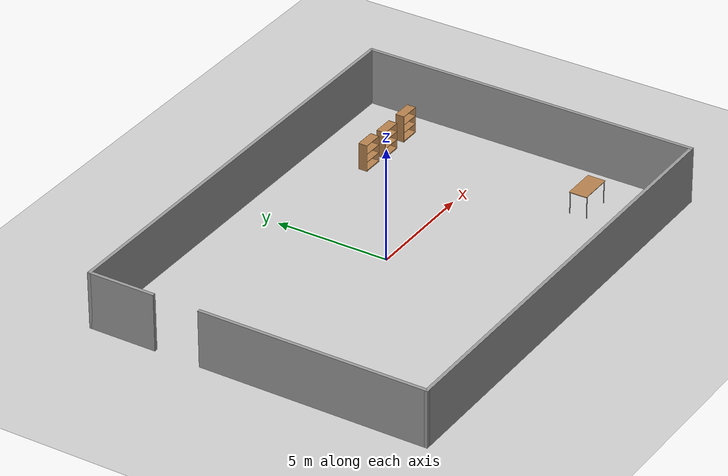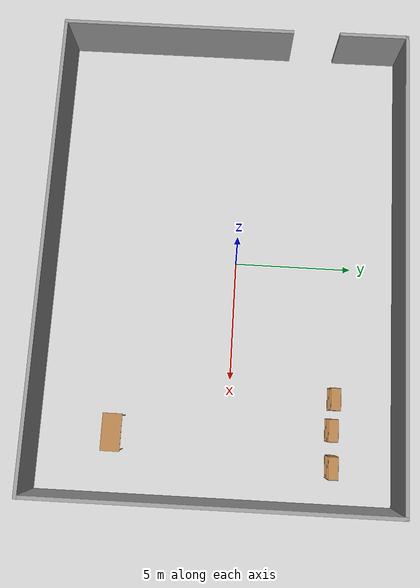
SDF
<sdf version="1.7">
 <world name="default">
  <model name="ground_plane">
   <static>1</static>
   <link name="link">
    <collision name="collision">
     <geometry><plane><normal>0 0 1</normal><size>100 100</size></plane></geometry>
     <surface><friction><ode><mu>100</mu><mu2>50</mu2></ode></friction></surface>
    </collision>
    <visual name="visual">
     <cast_shadows>0</cast_shadows>
     <geometry><plane><normal>0 0 1</normal><size>100 100</size></plane></geometry>
     <material>
      <script><uri>file://media/materials/scripts/gazebo.material</uri><name>Gazebo/Grey</name></script>
     </material>
    </visual>
   </link>
  </model>
  <light name="sun" type="directional">
   <pose>0 0 10 0 -0 0</pose>
   <diffuse>0.8 0.8 0.8 1</diffuse>
   <specular>0.2 0.2 0.2 1</specular>
   <attenuation>
    <range>1000</range>
    <constant>0.9</constant>
    <linear>0.01</linear>
    <quadratic>0.001</quadratic>
   </attenuation>
   <direction>-0.5 0.1 -0.9</direction>
   <spot><inner_angle>0</inner_angle><outer_angle>0</outer_angle><falloff>0</falloff></spot>
  </light>
  <scene><shadows>0</shadows><ambient>0.4 0.4 0.4 1</ambient><background>0.7 0.7 0.7 1</background></scene>
  <physics type="ode">
   <real_time_update_rate>1000</real_time_update_rate>
   <max_step_size>0.001</max_step_size>
   <real_time_factor>1</real_time_factor>
   <ode>
    <solver>
     <type>quick</type>
     <iters>150</iters>
     <precon_iters>0</precon_iters>
     <sor>1.4</sor>
     <use_dynamic_moi_rescaling>1</use_dynamic_moi_rescaling>
    </solver>
    <constraints>
     <cfm>1e-05</cfm>
     <erp>0.2</erp>
     <contact_max_correcting_vel>2000</contact_max_correcting_vel>
     <contact_surface_layer>0.01</contact_surface_layer>
    </constraints>
   </ode>
  </physics>
  <gravity>0 0 -9.8</gravity>
  <magnetic_field>6e-06 2.3e-05 -4.2e-05</magnetic_field>
  <atmosphere type="adiabatic"/>
  <audio><device>default</device></audio>
  <spherical_coordinates>
   <surface_model>EARTH_WGS84</surface_model>
   <latitude_deg>0</latitude_deg>
   <longitude_deg>0</longitude_deg>
   <elevation>0</elevation>
   <heading_deg>0</heading_deg>
  </spherical_coordinates>
  <model name="itu_walls">
   <pose>-0.001584 -0.508357 0 0 -0 0</pose>
   <link name="Wall_2">
    <collision name="Wall_2_Collision">
     <geometry><box><size>20 0.15 2.5</size></box></geometry>
     <pose>0 0 1.25 0 -0 0</pose>
    </collision>
    <visual name="Wall_2_Visual">
     <pose>0 0 1.25 0 -0 0</pose>
     <geometry><box><size>20 0.15 2.5</size></box></geometry>
     <material>
      <script><uri>file://media/materials/scripts/gazebo.material</uri><name>Gazebo/Grey</name></script>
      <ambient>1 1 1 1</ambient>
     </material>
     <meta><layer>0</layer></meta>
    </visual>
    <pose>0 7.425 0 0 -0 0</pose>
   </link>
   <link name="Wall_3">
    <collision name="Wall_3_Collision">
     <geometry><box><size>15 0.15 2.5</size></box></geometry>
     <pose>0 0 1.25 0 -0 0</pose>
    </collision>
    <visual name="Wall_3_Visual">
     <pose>0 0 1.25 0 -0 0</pose>
     <geometry><box><size>15 0.15 2.5</size></box></geometry>
     <material>
      <script><uri>file://media/materials/scripts/gazebo.material</uri><name>Gazebo/Grey</name></script>
      <ambient>1 1 1 1</ambient>
     </material>
     <meta><layer>0</layer></meta>
    </visual>
    <pose>9.925 0 0 0 -0 -1.5708</pose>
   </link>
   <link name="Wall_4">
    <collision name="Wall_4_Collision">
     <geometry><box><size>20 0.15 2.5</size></box></geometry>
     <pose>0 0 1.25 0 -0 0</pose>
    </collision>
    <visual name="Wall_4_Visual">
     <pose>0 0 1.25 0 -0 0</pose>
     <geometry><box><size>20 0.15 2.5</size></box></geometry>
     <material>
      <script><uri>file://media/materials/scripts/gazebo.material</uri><name>Gazebo/Grey</name></script>
      <ambient>1 1 1 1</ambient>
     </material>
     <meta><layer>0</layer></meta>
    </visual>
    <pose>0 -7.425 0 0 -0 3.14159</pose>
   </link>
   <link name="Wall_5">
    <collision name="Wall_5_Collision">
     <geometry><box><size>10 0.15 2.5</size></box></geometry>
     <pose>0 0 1.25 0 -0 0</pose>
    </collision>
    <visual name="Wall_5_Visual">
     <pose>0 0 1.25 0 -0 0</pose>
     <geometry><box><size>10 0.15 2.5</size></box></geometry>
     <material>
      <script><uri>file://media/materials/scripts/gazebo.material</uri><name>Gazebo/Grey</name></script>
      <ambient>1 1 1 1</ambient>
     </material>
     <meta><layer>0</layer></meta>
    </visual>
    <pose>-9.925 -2.5 0 0 -0 1.5708</pose>
   </link>
   <link name="Wall_7">
    <collision name="Wall_7_Collision">
     <geometry><box><size>3 0.15 2.5</size></box></geometry>
     <pose>0 0 1.25 0 -0 0</pose>
    </collision>
    <visual name="Wall_7_Visual">
     <pose>0 0 1.25 0 -0 0</pose>
     <geometry><box><size>3 0.15 2.5</size></box></geometry>
     <material>
      <script><uri>file://media/materials/scripts/gazebo.material</uri><name>Gazebo/Grey</name></script>
      <ambient>1 1 1 1</ambient>
     </material>
     <meta><layer>0</layer></meta>
    </visual>
    <pose>-9.925 6 0 0 -0 -1.5708</pose>
   </link>
   <static>1</static>
  </model>
  <model name="bookshelf">
   <static>1</static>
   <link name="link">
    <inertial><mass>1</mass></inertial>
    <collision name="back">
     <pose>0 0.005 0.6 0 -0 0</pose>
     <geometry><box><size>0.9 0.01 1.2</size></box></geometry>
    </collision>
    <visual name="visual1">
     <pose>0 0.005 0.6 0 -0 0</pose>
     <geometry><box><size>0.9 0.01 1.2</size></box></geometry>
     <material>
      <script><uri>file://media/materials/scripts/gazebo.material</uri><name>Gazebo/Wood</name></script>
     </material>
    </visual>
    <collision name="left_side">
     <pose>0.45 -0.195 0.6 0 -0 0</pose>
     <geometry><box><size>0.02 0.4 1.2</size></box></geometry>
    </collision>
    <visual name="visual2">
     <pose>0.45 -0.195 0.6 0 -0 0</pose>
     <geometry><box><size>0.02 0.4 1.2</size></box></geometry>
     <material>
      <script><uri>file://media/materials/scripts/gazebo.material</uri><name>Gazebo/Wood</name></script>
     </material>
    </visual>
    <collision name="right_side">
     <pose>-0.45 -0.195 0.6 0 -0 0</pose>
     <geometry><box><size>0.02 0.4 1.2</size></box></geometry>
    </collision>
    <visual name="visual3">
     <pose>-0.45 -0.195 0.6 0 -0 0</pose>
     <geometry><box><size>0.02 0.4 1.2</size></box></geometry>
     <material>
      <script><uri>file://media/materials/scripts/gazebo.material</uri><name>Gazebo/Wood</name></script>
     </material>
    </visual>
    <collision name="bottom">
     <pose>0 -0.195 0.03 0 -0 0</pose>
     <geometry><box><size>0.88 0.4 0.06</size></box></geometry>
    </collision>
    <visual name="visual4">
     <pose>0 -0.195 0.03 0 -0 0</pose>
     <geometry><box><size>0.88 0.4 0.06</size></box></geometry>
     <material>
      <script><uri>file://media/materials/scripts/gazebo.material</uri><name>Gazebo/Wood</name></script>
     </material>
    </visual>
    <collision name="top">
     <pose>0 -0.195 1.19 0 -0 0</pose>
     <geometry><box><size>0.88 0.4 0.02</size></box></geometry>
    </collision>
    <visual name="visual5">
     <pose>0 -0.195 1.19 0 -0 0</pose>
     <geometry><box><size>0.88 0.4 0.02</size></box></geometry>
     <material>
      <script><uri>file://media/materials/scripts/gazebo.material</uri><name>Gazebo/Wood</name></script>
     </material>
    </visual>
    <collision name="low_shelf">
     <pose>0 -0.195 0.43 0 -0 0</pose>
     <geometry><box><size>0.88 0.4 0.02</size></box></geometry>
    </collision>
    <visual name="visual6">
     <pose>0 -0.195 0.43 0 -0 0</pose>
     <geometry><box><size>0.88 0.4 0.02</size></box></geometry>
     <material>
      <script><uri>file://media/materials/scripts/gazebo.material</uri><name>Gazebo/Wood</name></script>
     </material>
    </visual>
    <collision name="high_shelf">
     <pose>0 -0.195 0.8 0 -0 0</pose>
     <geometry><box><size>0.88 0.4 0.02</size></box></geometry>
    </collision>
    <visual name="visual7">
     <pose>0 -0.195 0.8 0 -0 0</pose>
     <geometry><box><size>0.88 0.4 0.02</size></box></geometry>
     <material>
      <script><uri>file://media/materials/scripts/gazebo.material</uri><name>Gazebo/Wood</name></script>
     </material>
    </visual>
   </link>
   <pose>5.60967 4.53235 0 0 -0 0</pose>
  </model>
  <model name="bookshelf_0">
   <static>1</static>
   <link name="link">
    <inertial><mass>1</mass></inertial>
    <collision name="back">
     <pose>0 0.005 0.6 0 -0 0</pose>
     <geometry><box><size>0.9 0.01 1.2</size></box></geometry>
    </collision>
    <visual name="visual1">
     <pose>0 0.005 0.6 0 -0 0</pose>
     <geometry><box><size>0.9 0.01 1.2</size></box></geometry>
     <material>
      <script><uri>file://media/materials/scripts/gazebo.material</uri><name>Gazebo/Wood</name></script>
     </material>
    </visual>
    <collision name="left_side">
     <pose>0.45 -0.195 0.6 0 -0 0</pose>
     <geometry><box><size>0.02 0.4 1.2</size></box></geometry>
    </collision>
    <visual name="visual2">
     <pose>0.45 -0.195 0.6 0 -0 0</pose>
     <geometry><box><size>0.02 0.4 1.2</size></box></geometry>
     <material>
      <script><uri>file://media/materials/scripts/gazebo.material</uri><name>Gazebo/Wood</name></script>
     </material>
    </visual>
    <collision name="right_side">
     <pose>-0.45 -0.195 0.6 0 -0 0</pose>
     <geometry><box><size>0.02 0.4 1.2</size></box></geometry>
    </collision>
    <visual name="visual3">
     <pose>-0.45 -0.195 0.6 0 -0 0</pose>
     <geometry><box><size>0.02 0.4 1.2</size></box></geometry>
     <material>
      <script><uri>file://media/materials/scripts/gazebo.material</uri><name>Gazebo/Wood</name></script>
     </material>
    </visual>
    <collision name="bottom">
     <pose>0 -0.195 0.03 0 -0 0</pose>
     <geometry><box><size>0.88 0.4 0.06</size></box></geometry>
    </collision>
    <visual name="visual4">
     <pose>0 -0.195 0.03 0 -0 0</pose>
     <geometry><box><size>0.88 0.4 0.06</size></box></geometry>
     <material>
      <script><uri>file://media/materials/scripts/gazebo.material</uri><name>Gazebo/Wood</name></script>
     </material>
    </visual>
    <collision name="top">
     <pose>0 -0.195 1.19 0 -0 0</pose>
     <geometry><box><size>0.88 0.4 0.02</size></box></geometry>
    </collision>
    <visual name="visual5">
     <pose>0 -0.195 1.19 0 -0 0</pose>
     <geometry><box><size>0.88 0.4 0.02</size></box></geometry>
     <material>
      <script><uri>file://media/materials/scripts/gazebo.material</uri><name>Gazebo/Wood</name></script>
     </material>
    </visual>
    <collision name="low_shelf">
     <pose>0 -0.195 0.43 0 -0 0</pose>
     <geometry><box><size>0.88 0.4 0.02</size></box></geometry>
    </collision>
    <visual name="visual6">
     <pose>0 -0.195 0.43 0 -0 0</pose>
     <geometry><box><size>0.88 0.4 0.02</size></box></geometry>
     <material>
      <script><uri>file://media/materials/scripts/gazebo.material</uri><name>Gazebo/Wood</name></script>
     </material>
    </visual>
    <collision name="high_shelf">
     <pose>0 -0.195 0.8 0 -0 0</pose>
     <geometry><box><size>0.88 0.4 0.02</size></box></geometry>
    </collision>
    <visual name="visual7">
     <pose>0 -0.195 0.8 0 -0 0</pose>
     <geometry><box><size>0.88 0.4 0.02</size></box></geometry>
     <material>
      <script><uri>file://media/materials/scripts/gazebo.material</uri><name>Gazebo/Wood</name></script>
     </material>
    </visual>
   </link>
   <pose>6.8604 4.4569 0 0 -0 0</pose>
  </model>
  <model name="bookshelf_1">
   <static>1</static>
   <link name="link">
    <inertial><mass>1</mass></inertial>
    <collision name="back">
     <pose>0 0.005 0.6 0 -0 0</pose>
     <geometry><box><size>0.9 0.01 1.2</size></box></geometry>
    </collision>
    <visual name="visual1">
     <pose>0 0.005 0.6 0 -0 0</pose>
     <geometry><box><size>0.9 0.01 1.2</size></box></geometry>
     <material>
      <script><uri>file://media/materials/scripts/gazebo.material</uri><name>Gazebo/Wood</name></script>
     </material>
    </visual>
    <collision name="left_side">
     <pose>0.45 -0.195 0.6 0 -0 0</pose>
     <geometry><box><size>0.02 0.4 1.2</size></box></geometry>
    </collision>
    <visual name="visual2">
     <pose>0.45 -0.195 0.6 0 -0 0</pose>
     <geometry><box><size>0.02 0.4 1.2</size></box></geometry>
     <material>
      <script><uri>file://media/materials/scripts/gazebo.material</uri><name>Gazebo/Wood</name></script>
     </material>
    </visual>
    <collision name="right_side">
     <pose>-0.45 -0.195 0.6 0 -0 0</pose>
     <geometry><box><size>0.02 0.4 1.2</size></box></geometry>
    </collision>
    <visual name="visual3">
     <pose>-0.45 -0.195 0.6 0 -0 0</pose>
     <geometry><box><size>0.02 0.4 1.2</size></box></geometry>
     <material>
      <script><uri>file://media/materials/scripts/gazebo.material</uri><name>Gazebo/Wood</name></script>
     </material>
    </visual>
    <collision name="bottom">
     <pose>0 -0.195 0.03 0 -0 0</pose>
     <geometry><box><size>0.88 0.4 0.06</size></box></geometry>
    </collision>
    <visual name="visual4">
     <pose>0 -0.195 0.03 0 -0 0</pose>
     <geometry><box><size>0.88 0.4 0.06</size></box></geometry>
     <material>
      <script><uri>file://media/materials/scripts/gazebo.material</uri><name>Gazebo/Wood</name></script>
     </material>
    </visual>
    <collision name="top">
     <pose>0 -0.195 1.19 0 -0 0</pose>
     <geometry><box><size>0.88 0.4 0.02</size></box></geometry>
    </collision>
    <visual name="visual5">
     <pose>0 -0.195 1.19 0 -0 0</pose>
     <geometry><box><size>0.88 0.4 0.02</size></box></geometry>
     <material>
      <script><uri>file://media/materials/scripts/gazebo.material</uri><name>Gazebo/Wood</name></script>
     </material>
    </visual>
    <collision name="low_shelf">
     <pose>0 -0.195 0.43 0 -0 0</pose>
     <geometry><box><size>0.88 0.4 0.02</size></box></geometry>
    </collision>
    <visual name="visual6">
     <pose>0 -0.195 0.43 0 -0 0</pose>
     <geometry><box><size>0.88 0.4 0.02</size></box></geometry>
     <material>
      <script><uri>file://media/materials/scripts/gazebo.material</uri><name>Gazebo/Wood</name></script>
     </material>
    </visual>
    <collision name="high_shelf">
     <pose>0 -0.195 0.8 0 -0 0</pose>
     <geometry><box><size>0.88 0.4 0.02</size></box></geometry>
    </collision>
    <visual name="visual7">
     <pose>0 -0.195 0.8 0 -0 0</pose>
     <geometry><box><size>0.88 0.4 0.02</size></box></geometry>
     <material>
      <script><uri>file://media/materials/scripts/gazebo.material</uri><name>Gazebo/Wood</name></script>
     </material>
    </visual>
   </link>
   <pose>8.32577 4.48273 0 0 -0 0</pose>
  </model>
  <model name="table">
   <static>1</static>
   <link name="link">
    <collision name="surface">
     <pose>0 0 1 0 -0 0</pose>
     <geometry><box><size>1.5 0.8 0.03</size></box></geometry>
     <surface><friction><ode><mu>0.6</mu><mu2>0.6</mu2></ode></friction></surface>
    </collision>
    <visual name="visual1">
     <pose>0 0 1 0 -0 0</pose>
     <geometry><box><size>1.5 0.8 0.03</size></box></geometry>
     <material>
      <script><uri>file://media/materials/scripts/gazebo.material</uri><name>Gazebo/Wood</name></script>
     </material>
    </visual>
    <collision name="front_left_leg">
     <pose>0.68 0.38 0.5 0 -0 0</pose>
     <geometry><cylinder><radius>0.02</radius><length>1</length></cylinder></geometry>
    </collision>
    <visual name="front_left_leg">
     <pose>0.68 0.38 0.5 0 -0 0</pose>
     <geometry><cylinder><radius>0.02</radius><length>1</length></cylinder></geometry>
     <material>
      <script><uri>file://media/materials/scripts/gazebo.material</uri><name>Gazebo/Grey</name></script>
     </material>
    </visual>
    <collision name="front_right_leg">
     <pose>0.68 -0.38 0.5 0 -0 0</pose>
     <geometry><cylinder><radius>0.02</radius><length>1</length></cylinder></geometry>
    </collision>
    <visual name="front_right_leg">
     <pose>0.68 -0.38 0.5 0 -0 0</pose>
     <geometry><cylinder><radius>0.02</radius><length>1</length></cylinder></geometry>
     <material>
      <script><uri>file://media/materials/scripts/gazebo.material</uri><name>Gazebo/Grey</name></script>
     </material>
    </visual>
    <collision name="back_right_leg">
     <pose>-0.68 -0.38 0.5 0 -0 0</pose>
     <geometry><cylinder><radius>0.02</radius><length>1</length></cylinder></geometry>
    </collision>
    <visual name="back_right_leg">
     <pose>-0.68 -0.38 0.5 0 -0 0</pose>
     <geometry><cylinder><radius>0.02</radius><length>1</length></cylinder></geometry>
     <material>
      <script><uri>file://media/materials/scripts/gazebo.material</uri><name>Gazebo/Grey</name></script>
     </material>
    </visual>
    <collision name="back_left_leg">
     <pose>-0.68 0.38 0.5 0 -0 0</pose>
     <geometry><cylinder><radius>0.02</radius><length>1</length></cylinder></geometry>
    </collision>
    <visual name="back_left_leg">
     <pose>-0.68 0.38 0.5 0 -0 0</pose>
     <geometry><cylinder><radius>0.02</radius><length>1</length></cylinder></geometry>
     <material>
      <script><uri>file://media/materials/scripts/gazebo.material</uri><name>Gazebo/Grey</name></script>
     </material>
    </visual>
   </link>
   <pose>7.39911 -4.71335 0 0 -0 0</pose>
  </model>
 </world>
</sdf>
